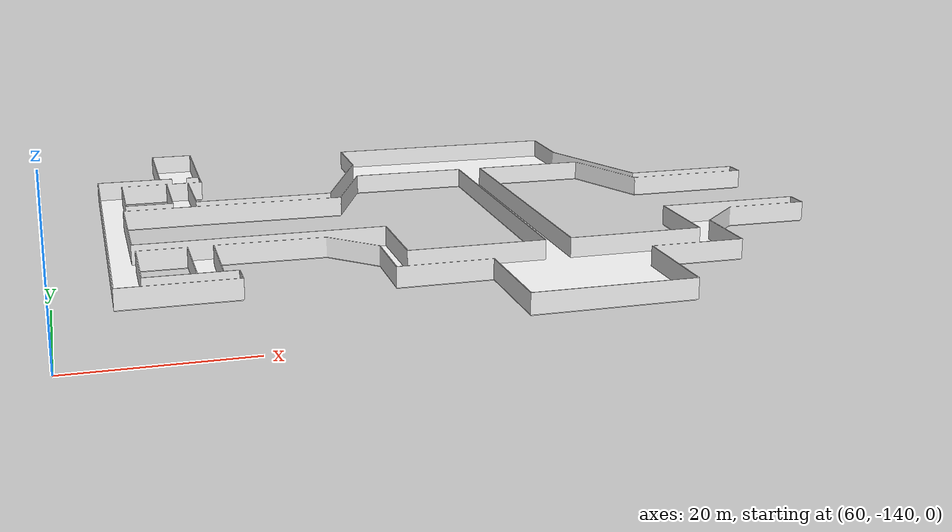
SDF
<?xml version='1.0' encoding='utf-8'?>
<sdf version="1.7">
  <model name="glhd_L1">
    <static>true</static>
    <link name="floor_1">
      <visual name="visual">
        <geometry>
          <mesh>
            <uri>model://glhd_L1/meshes/floor_1.obj</uri>
          </mesh>
        </geometry>
        <material>
          <diffuse>1.0 1.0 1.0</diffuse>
          <specular>0.1 0.1 0.1</specular>
          <pbr>
            <metal>
              <metalness>0.0</metalness>
              <albedo_map>model://glhd_L1/meshes/beige_tiles.png</albedo_map>
            </metal>
          </pbr>
          <script>
            <uri>model://glhd_L1/meshes/</uri>
            <name>floor_1_Diffuse</name>
          </script>
        </material>
      </visual>
      <collision name="collision">
        <geometry>
          <mesh>
            <uri>model://glhd_L1/meshes/floor_1.obj</uri>
          </mesh>
        </geometry>
        <surface>
          <contact>
            <collide_bitmask>0x01</collide_bitmask>
          </contact>
        </surface>
      </collision>
    </link>
    <link name="floor_2">
      <visual name="visual">
        <geometry>
          <mesh>
            <uri>model://glhd_L1/meshes/floor_2.obj</uri>
          </mesh>
        </geometry>
        <material>
          <diffuse>1.0 1.0 1.0</diffuse>
          <specular>0.1 0.1 0.1</specular>
          <pbr>
            <metal>
              <metalness>0.0</metalness>
              <albedo_map>model://glhd_L1/meshes/blue_linoleum.png</albedo_map>
            </metal>
          </pbr>
          <script>
            <uri>model://glhd_L1/meshes/</uri>
            <name>floor_2_Diffuse</name>
          </script>
        </material>
      </visual>
      <collision name="collision">
        <geometry>
          <mesh>
            <uri>model://glhd_L1/meshes/floor_2.obj</uri>
          </mesh>
        </geometry>
        <surface>
          <contact>
            <collide_bitmask>0x01</collide_bitmask>
          </contact>
        </surface>
      </collision>
    </link>
    <link name="floor_3">
      <visual name="visual">
        <geometry>
          <mesh>
            <uri>model://glhd_L1/meshes/floor_3.obj</uri>
          </mesh>
        </geometry>
        <material>
          <diffuse>1.0 1.0 1.0</diffuse>
          <specular>0.1 0.1 0.1</specular>
          <pbr>
            <metal>
              <metalness>0.0</metalness>
              <albedo_map>model://glhd_L1/meshes/brown_marble.png</albedo_map>
            </metal>
          </pbr>
          <script>
            <uri>model://glhd_L1/meshes/</uri>
            <name>floor_3_Diffuse</name>
          </script>
        </material>
      </visual>
      <collision name="collision">
        <geometry>
          <mesh>
            <uri>model://glhd_L1/meshes/floor_3.obj</uri>
          </mesh>
        </geometry>
        <surface>
          <contact>
            <collide_bitmask>0x01</collide_bitmask>
          </contact>
        </surface>
      </collision>
    </link>
    <link name="wall_1">
      <visual name="wall_1">
        <geometry>
          <mesh>
            <uri>model://glhd_L1/meshes/wall_1.obj</uri>
          </mesh>
        </geometry>
        <transparency>0.0</transparency>
        <material>
          <diffuse>1.0 1.0 1.0</diffuse>
          <specular>0.1 0.1 0.1</specular>
          <pbr>
            <metal>
              <metalness>0.0</metalness>
              <albedo_map>model://glhd_L1/meshes/default.png</albedo_map>
            </metal>
          </pbr>
          <script>
            <uri>model://glhd_L1/meshes/</uri>
            <name>wall_1_Diffuse</name>
          </script>
        </material>
      </visual>
      <collision name="collision">
        <geometry>
          <mesh>
            <uri>model://glhd_L1/meshes/wall_1.obj</uri>
          </mesh>
        </geometry>
        <surface>
          <contact>
            <collide_bitmask>0x01</collide_bitmask>
          </contact>
        </surface>
      </collision>
      <pose>66.44639466819869 -135.31092229621646 0 0 0 0</pose>
    </link>
  </model>
</sdf>
